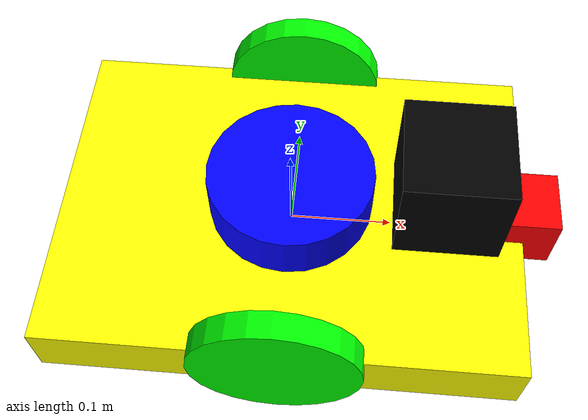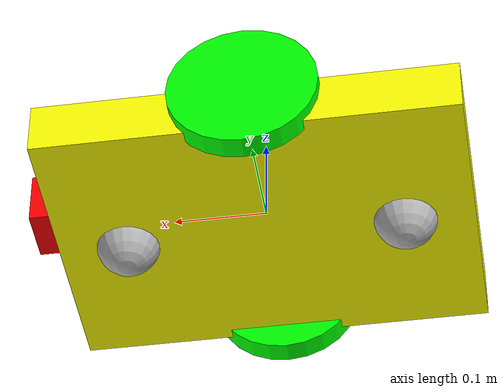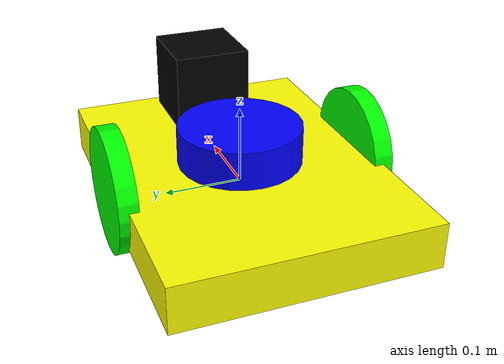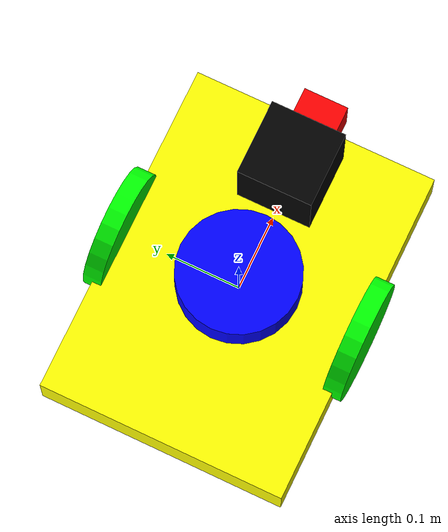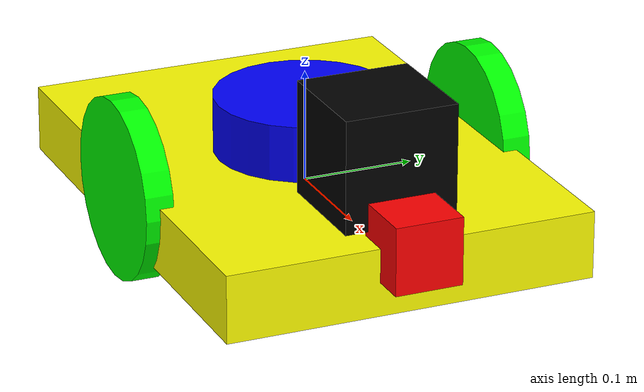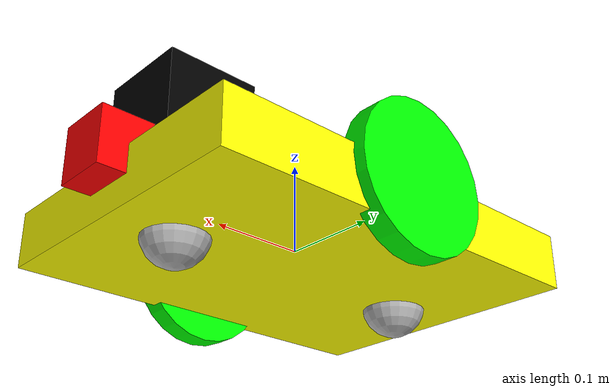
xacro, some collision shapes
<?xml version='1.0'?>
<robot name="my_robot" xmlns:xacro="http://www.ros.org/wiki/xacro">
  <material name="blue">
    <color rgba="0 0 1 1"/>
  </material>
  <material name="green">
    <color rgba="0 1 0 1"/>
  </material>
  <material name="grey">
    <color rgba="0.7 0.7 0.7 1"/>
  </material>
  <material name="red">
    <color rgba="1 0 0 1"/>
  </material>
  <material name="black">
    <color rgba="0 0 0 1"/>
  </material>
  <material name="yellow">
    <color rgba="1 1 0 1"/>
  </material>
  <material name="white">
    <color rgba="1 1 1 1"/>
  </material>
  <material name="top_cylinder_blue_material">
    <color rgba="0 0 1 1"/>
  </material>
  <xacro:include filename="$(find my_robot)/urdf/my_robot.gazebo" />
  <link name="robot_footprint"></link>
  <joint name="robot_footprint_joint" type="fixed">
    <origin xyz="0 0 0" rpy="0 0 0" />
    <parent link="robot_footprint"/>
    <child link="chassis" />
  </joint>
  <link name='chassis'>
    <pose>0 0 0.06 0 0 0</pose>
    <inertial>
      <mass value="15.0"/>
      <origin xyz="0.0 0 0" rpy="0 0 0"/>
      <inertia
        ixx="0.1" ixy="0" ixz="0"
        iyy="0.1" iyz="0"
        izz="0.1"
      />
    </inertial>
    <collision name='collision'>
      <origin xyz="0 0 0" rpy="0 0 0"/>
      <geometry>
        <box size=".45 .33 .06"/>
      </geometry>
    </collision>
    <visual name='chassis_visual_base'>
      <origin xyz="0 0 0" rpy="0 0 0"/>
      <geometry>
        <box size=".45 .33 .06"/>
      </geometry>
      <material name="yellow"/>
    </visual>
    <collision name='back_caster_collision'>
      <origin xyz="-0.15 0 -0.025" rpy="0 0 0"/>
      <geometry>
        <sphere radius="0.035"/>
      </geometry>
    </collision>
    <visual name='back_caster_visual'>
      <origin xyz="-0.15 0 -0.025" rpy="0 0 0"/>
      <geometry>
        <sphere radius="0.035"/>
      </geometry>
      <material name="grey"/>
    </visual>
    <collision name='front_caster_collision'>
      <origin xyz="0.15 0 -0.025" rpy="0 0 0"/>
      <geometry>
        <sphere radius="0.035"/>
      </geometry>
    </collision>
    <visual name='front_caster_visual'>
      <origin xyz="0.15 0 -0.025" rpy="0 0 0"/>
      <geometry>
        <sphere radius="0.035"/>
      </geometry>
      <material name="grey"/>
    </visual>
  </link>
  <link name='top_cylinder_link'>
    <inertial>
      <mass value="0.1"/>
      <origin xyz="0 0 0" rpy="0 0 0"/>
      <inertia
        ixx="1e-6" ixy="0" ixz="0"
        iyy="1e-6" iyz="0"
        izz="1e-6"
      />
    </inertial>
    <collision>
      <origin xyz="0 0 0" rpy="0 0 0"/>
      <geometry>
        <cylinder radius="0.08" length="0.05"/>
      </geometry>
    </collision>
    <visual>
      <origin xyz="0 0 0" rpy="0 0 0"/>
      <geometry>
        <cylinder radius="0.08" length="0.05"/>
      </geometry>
      <material name="top_cylinder_blue_material"/>
    </visual>
  </link>
  <joint name="top_cylinder_joint" type="fixed">
    <origin xyz="0 0 0.055" rpy="0 0 0"/>
    <parent link="chassis"/>
    <child link="top_cylinder_link"/>
  </joint>
  <link name='left_wheel'>
    <inertial>
      <mass value="5"/>
      <origin xyz="0 0 0" rpy="0 1.5707 1.5707"/>
      <inertia
        ixx="0.1" ixy="0" ixz="0"
        iyy="0.1" iyz="0"
        izz="0.1"
      />
    </inertial>
    <collision>
      <origin xyz="0 0 0" rpy="0 1.5707 1.5707"/>
      <geometry>
        <cylinder radius="0.08" length="0.025"/>
      </geometry>
    </collision>
    <visual>
      <origin xyz="0 0 0" rpy="0 1.5707 1.5707"/>
      <geometry>
        <cylinder radius="0.08" length="0.025"/>
      </geometry>
      <material name="green"/>
    </visual>
  </link>
  <link name='right_wheel'>
    <inertial>
      <mass value="5"/>
      <origin xyz="0 0 0" rpy="0 1.5707 1.5707"/>
      <inertia
        ixx="0.1" ixy="0" ixz="0"
        iyy="0.1" iyz="0"
        izz="0.1"
      />
    </inertial>
    <collision>
      <origin xyz="0 0 0" rpy="0 1.5707 1.5707"/>
      <geometry>
        <cylinder radius="0.08" length="0.025"/>
      </geometry>
    </collision>
    <visual>
      <origin xyz="0 0 0" rpy="0 1.5707 1.5707"/>
      <geometry>
        <cylinder radius="0.08" length="0.025"/>
      </geometry>
      <material name="green"/>
    </visual>
  </link>
  <joint type="continuous" name="left_wheel_joint">
    <origin xyz="0 0.165 0.02" rpy="0 0 0"/>
    <child link="left_wheel"/>
    <parent link="chassis"/>
    <axis xyz="0 1 0" rpy="0 0 0"/>
    <limit effort="10000" velocity="1000"/>
    <dynamics damping="1.0" friction="1.0"/>
  </joint>
  <joint type="continuous" name="right_wheel_joint">
    <origin xyz="0 -0.165 0.02" rpy="0 0 0"/>
    <child link="right_wheel"/>
    <parent link="chassis"/>
    <axis xyz="0 1 0" rpy="0 0 0"/>
    <limit effort="10000" velocity="1000"/>
    <dynamics damping="1.0" friction="1.0"/>
  </joint>
  <link name='camera'>
    <inertial>
      <mass value="0.1"/>
      <origin xyz="0 0 0" rpy="0 0 0"/>
      <inertia
        ixx="1e-6" ixy="0" ixz="0"
        iyy="1e-6" iyz="0"
        izz="1e-6"
      />
    </inertial>
    <collision>
      <origin xyz="0 0 0" rpy="0 0 0"/>
      <geometry>
        <box size="0.06 0.06 0.06"/>
      </geometry>
    </collision>
    <visual>
      <origin xyz="0 0 0" rpy="0 0 0"/>
      <geometry>
        <box size="0.06 0.06 0.06"/>
      </geometry>
      <material name="red"/>
    </visual>
  </link>
  <joint name="camera_joint" type="fixed">
    <origin xyz="0.225 0 0.03" rpy="0 0 0"/>
    <parent link="chassis"/>
    <child link="camera"/>
    <axis xyz="0 1 0"/>
  </joint>
  <joint name="camera_optical_joint" type="fixed">
    <origin xyz="0 0 0" rpy="-1.5707 0 -1.5707"/>
    <parent link="camera"/>
    <child link="camera_link_optical"/>
  </joint>
  <link name="camera_link_optical">
  </link>
  <link name='hokuyo'>
    <inertial>
      <mass value="1e-5"/>
      <origin xyz="0 0 0" rpy="0 0 0"/>
      <inertia
        ixx="1e-6" ixy="0" ixz="0"
        iyy="1e-6" iyz="0"
        izz="1e-6"
      />
    </inertial>
    <collision>
      <origin xyz="0 0 0" rpy="0 0 0"/>
      <geometry>
        <box size="0.1 0.1 0.1"/>
      </geometry>
    </collision>
    <visual>
      <origin xyz="0 0 0" rpy="0 0 0"/>
      <geometry>
        <mesh filename="package://my_robot/meshes/hokuyo.dae"/>
      </geometry>
      <material name="black"/>
    </visual>
  </link>
  <joint name="hokuyo_joint" type="fixed">
    <origin xyz="0.15 0 0.085" rpy="0 0 0"/>
    <parent link="chassis"/>
    <child link="hokuyo"/>
    <axis xyz="0 1 0"/>
  </joint>
  <gazebo reference="chassis">
    <material>Gazebo/Yellow</material>
  </gazebo>
  <gazebo reference="top_cylinder_link">
    <material>Gazebo/Blue</material>
  </gazebo>
  <gazebo reference="left_wheel">
    <material>Gazebo/Green</material>
  </gazebo>
  <gazebo reference="right_wheel">
    <material>Gazebo/Green</material>
  </gazebo>
  <gazebo reference="front_caster">
    <material>Gazebo/Grey</material>
  </gazebo>
  <gazebo reference="back_caster">
    <material>Gazebo/Grey</material>
  </gazebo>
  <gazebo reference="camera">
    <material>Gazebo/Red</material>
  </gazebo>
  <gazebo reference="hokuyo">
    <material>Gazebo/Black</material>
  </gazebo>
</robot>
